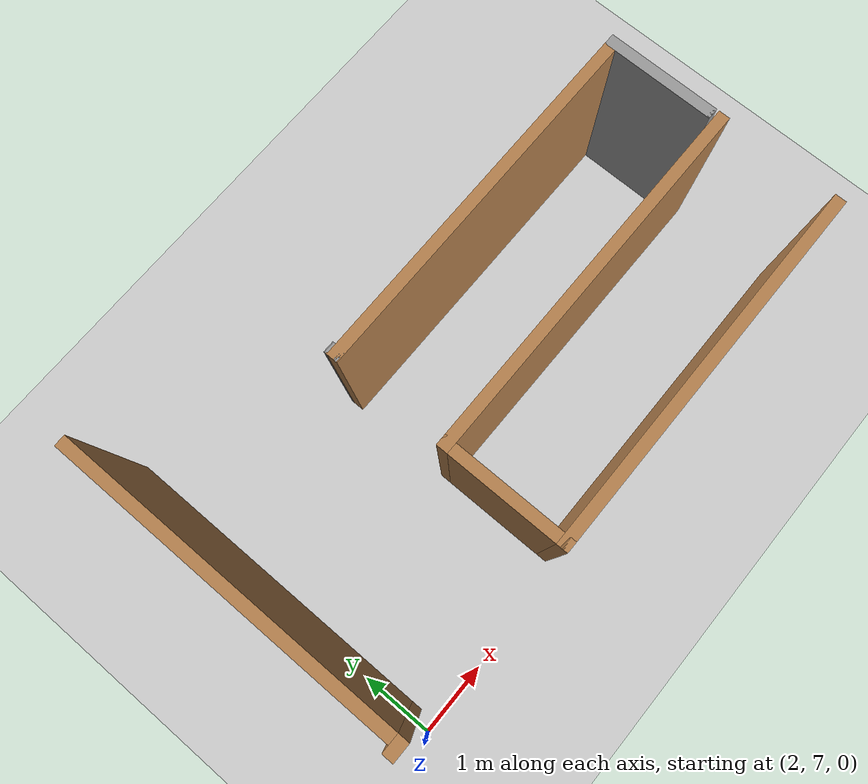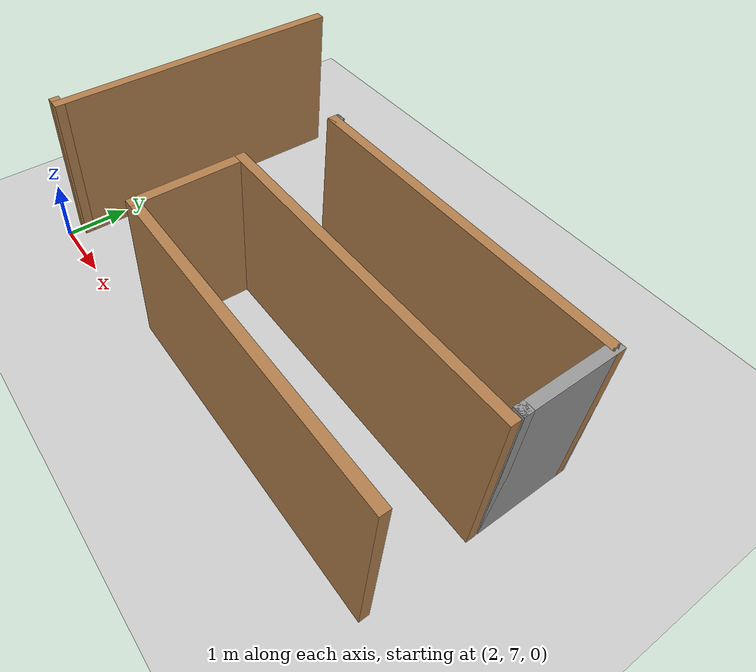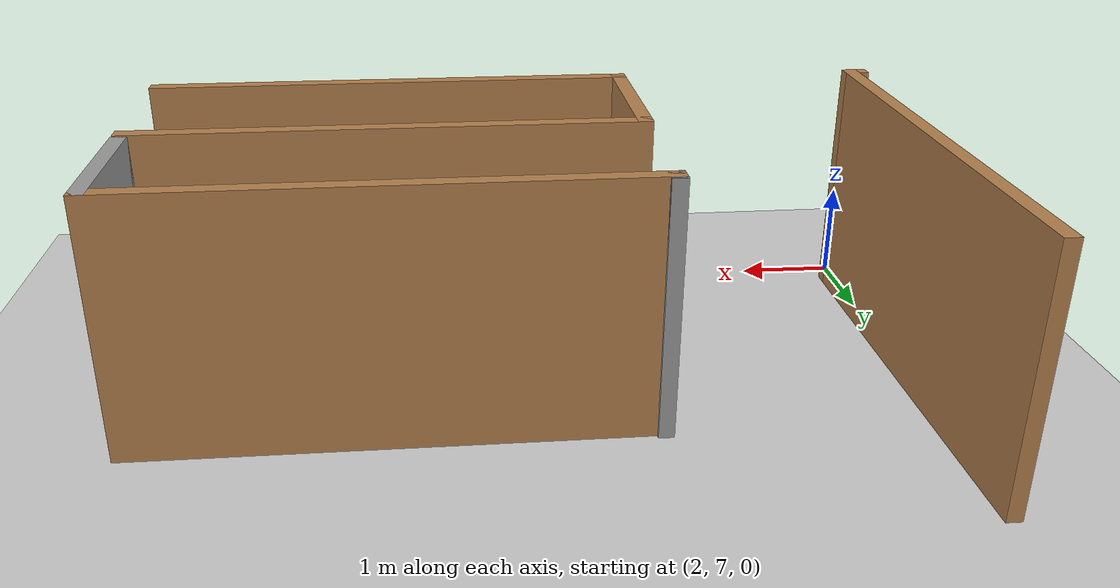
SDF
<sdf version="1.6">
 <world name="default">
  <model name="ground_plane">
   <static>1</static>
   <link name="link">
    <collision name="collision">
     <geometry><plane><normal>0 0 1</normal><size>100 100</size></plane></geometry>
     <surface>
      <contact><collide_bitmask>65535</collide_bitmask></contact>
      <friction><ode><mu>100</mu><mu2>50</mu2></ode></friction>
     </surface>
    </collision>
    <visual name="visual">
     <cast_shadows>0</cast_shadows>
     <geometry><plane><normal>0 0 1</normal><size>100 100</size></plane></geometry>
     <material>
      <script><uri>file://media/materials/scripts/gazebo.material</uri><name>Gazebo/Grey</name></script>
     </material>
    </visual>
   </link>
  </model>
  <model name="ecst_lab_v2">
   <pose>2.38151 7.60499 -4e-06 -3e-06 3e-06 -1.57079</pose>
   <link name="Wall_10">
    <collision name="Wall_10_Collision">
     <geometry><box><size>1.5 0.15 2.5</size></box></geometry>
     <pose>0 0 1.25 0 -0 0</pose>
    </collision>
    <visual name="Wall_10_Visual">
     <pose>0 0 1.25 0 -0 0</pose>
     <geometry><box><size>1.5 0.15 2.5</size></box></geometry>
     <material>
      <script><uri>file://media/materials/scripts/gazebo.material</uri><name>Gazebo/Grey</name></script>
      <ambient>1 1 1 1</ambient>
     </material>
     <meta><layer>0</layer></meta>
    </visual>
    <pose>-2.09801 7.10227 0 0 -0 0</pose>
    <inertial>
     <inertia><ixx>1</ixx><ixy>0</ixy><ixz>0</ixz><iyy>1</iyy><iyz>0</iyz><izz>1</izz></inertia>
     <mass>1</mass>
    </inertial>
   </link>
   <link name="Wall_11">
    <collision name="Wall_11_Collision">
     <geometry><box><size>0.15 0.15 2.5</size></box></geometry>
     <pose>0 0 1.25 0 -0 0</pose>
    </collision>
    <visual name="Wall_11_Visual">
     <pose>0 0 1.25 0 -0 0</pose>
     <geometry><box><size>0.15 0.15 2.5</size></box></geometry>
     <material>
      <script><uri>file://media/materials/scripts/gazebo.material</uri><name>Gazebo/Grey</name></script>
      <ambient>1 1 1 1</ambient>
     </material>
     <meta><layer>0</layer></meta>
    </visual>
    <pose>-1.42301 7.10227 0 0 -0 0</pose>
    <inertial>
     <inertia><ixx>1</ixx><ixy>0</ixy><ixz>0</ixz><iyy>1</iyy><iyz>0</iyz><izz>1</izz></inertia>
     <mass>1</mass>
    </inertial>
   </link>
   <link name="Wall_21">
    <collision name="Wall_21_Collision">
     <geometry><box><size>5 0.15 2.5</size></box></geometry>
     <pose>0 0 1.25 0 -0 0</pose>
    </collision>
    <visual name="Wall_21_Visual">
     <pose>0 0 1.25 0 -0 0</pose>
     <geometry><box><size>5 0.15 2.5</size></box></geometry>
     <material>
      <script><uri>file://media/materials/scripts/gazebo.material</uri><name>Gazebo/Wood</name></script>
      <ambient>1 1 1 1</ambient>
     </material>
     <meta><layer>0</layer></meta>
    </visual>
    <pose>-1.24301 4.67727 0 0 -0 -1.5708</pose>
    <inertial>
     <inertia><ixx>1</ixx><ixy>0</ixy><ixz>0</ixz><iyy>1</iyy><iyz>0</iyz><izz>1</izz></inertia>
     <mass>1</mass>
    </inertial>
   </link>
   <link name="Wall_22">
    <collision name="Wall_22_Collision">
     <geometry><box><size>1.75 0.15 2.5</size></box></geometry>
     <pose>0 0 1.25 0 -0 0</pose>
    </collision>
    <visual name="Wall_22_Visual">
     <pose>0 0 1.25 0 -0 0</pose>
     <geometry><box><size>1.75 0.15 2.5</size></box></geometry>
     <material>
      <script><uri>file://media/materials/scripts/gazebo.material</uri><name>Gazebo/Wood</name></script>
      <ambient>1 1 1 1</ambient>
     </material>
     <meta><layer>0</layer></meta>
    </visual>
    <pose>-0.443013 2.25228 0 0 -0 0</pose>
    <inertial>
     <inertia><ixx>1</ixx><ixy>0</ixy><ixz>0</ixz><iyy>1</iyy><iyz>0</iyz><izz>1</izz></inertia>
     <mass>1</mass>
    </inertial>
   </link>
   <link name="Wall_23">
    <collision name="Wall_23_Collision">
     <geometry><box><size>5 0.15 2.5</size></box></geometry>
     <pose>0 0 1.25 0 -0 0</pose>
    </collision>
    <visual name="Wall_23_Visual">
     <pose>0 0 1.25 0 -0 0</pose>
     <geometry><box><size>5 0.15 2.5</size></box></geometry>
     <material>
      <script><uri>file://media/materials/scripts/gazebo.material</uri><name>Gazebo/Wood</name></script>
      <ambient>1 1 1 1</ambient>
     </material>
     <meta><layer>0</layer></meta>
    </visual>
    <pose>0.356987 4.67727 0 0 -0 1.5708</pose>
    <inertial>
     <inertia><ixx>1</ixx><ixy>0</ixy><ixz>0</ixz><iyy>1</iyy><iyz>0</iyz><izz>1</izz></inertia>
     <mass>1</mass>
    </inertial>
   </link>
   <link name="Wall_5">
    <collision name="Wall_5_Collision">
     <geometry><box><size>0.16 0.15 2.5</size></box></geometry>
     <pose>0 0 1.25 0 -0 0</pose>
    </collision>
    <visual name="Wall_5_Visual">
     <pose>0 0 1.25 0 -0 0</pose>
     <geometry><box><size>0.16 0.15 2.5</size></box></geometry>
     <material>
      <script><uri>file://media/materials/scripts/gazebo.material</uri><name>Gazebo/Grey</name></script>
      <ambient>1 1 1 1</ambient>
     </material>
     <meta><layer>0</layer></meta>
    </visual>
    <pose>-2.80801 2.25228 0 0 -0 0</pose>
    <inertial>
     <inertia><ixx>1</ixx><ixy>0</ixy><ixz>0</ixz><iyy>1</iyy><iyz>0</iyz><izz>1</izz></inertia>
     <mass>1</mass>
    </inertial>
   </link>
   <link name="Wall_6">
    <collision name="Wall_6_Collision">
     <geometry><box><size>0.16 0.15 2.5</size></box></geometry>
     <pose>0 0 1.25 0 -0 0</pose>
    </collision>
    <visual name="Wall_6_Visual">
     <pose>0 0 1.25 0 -0 0</pose>
     <geometry><box><size>0.16 0.15 2.5</size></box></geometry>
     <material>
      <script><uri>file://media/materials/scripts/gazebo.material</uri><name>Gazebo/Grey</name></script>
      <ambient>1 1 1 1</ambient>
     </material>
     <meta><layer>0</layer></meta>
    </visual>
    <pose>-2.79801 2.25228 0 0 -0 0</pose>
    <inertial>
     <inertia><ixx>1</ixx><ixy>0</ixy><ixz>0</ixz><iyy>1</iyy><iyz>0</iyz><izz>1</izz></inertia>
     <mass>1</mass>
    </inertial>
   </link>
   <link name="Wall_7">
    <collision name="Wall_7_Collision">
     <geometry><box><size>0.16 0.15 2.5</size></box></geometry>
     <pose>0 0 1.25 0 -0 0</pose>
    </collision>
    <visual name="Wall_7_Visual">
     <pose>0 0 1.25 0 -0 0</pose>
     <geometry><box><size>0.16 0.15 2.5</size></box></geometry>
     <material>
      <script><uri>file://media/materials/scripts/gazebo.material</uri><name>Gazebo/Grey</name></script>
      <ambient>1 1 1 1</ambient>
     </material>
     <meta><layer>0</layer></meta>
    </visual>
    <pose>-2.78801 2.25228 0 0 -0 0</pose>
    <inertial>
     <inertia><ixx>1</ixx><ixy>0</ixy><ixz>0</ixz><iyy>1</iyy><iyz>0</iyz><izz>1</izz></inertia>
     <mass>1</mass>
    </inertial>
   </link>
   <link name="Wall_74">
    <collision name="Wall_74_Collision">
     <geometry><box><size>0.25 0.15 2.5</size></box></geometry>
     <pose>0 0 1.25 0 -0 0</pose>
    </collision>
    <visual name="Wall_74_Visual">
     <pose>0 0 1.25 0 -0 0</pose>
     <geometry><box><size>0.25 0.15 2.5</size></box></geometry>
     <material>
      <script><uri>file://media/materials/scripts/gazebo.material</uri><name>Gazebo/Wood</name></script>
      <ambient>1 1 1 1</ambient>
     </material>
     <meta><layer>0</layer></meta>
    </visual>
    <pose>0.303428 -0.352274 0 0 -0 1.5708</pose>
    <inertial>
     <inertia><ixx>1</ixx><ixy>0</ixy><ixz>0</ixz><iyy>1</iyy><iyz>0</iyz><izz>1</izz></inertia>
     <mass>1</mass>
    </inertial>
   </link>
   <link name="Wall_75">
    <collision name="Wall_75_Collision">
     <geometry><box><size>4.75 0.15 2.5</size></box></geometry>
     <pose>0 0 1.25 0 -0 0</pose>
    </collision>
    <visual name="Wall_75_Visual">
     <pose>0 0 1.25 0 -0 0</pose>
     <geometry><box><size>4.75 0.15 2.5</size></box></geometry>
     <material>
      <script><uri>file://media/materials/scripts/gazebo.material</uri><name>Gazebo/Wood</name></script>
      <ambient>1 1 1 1</ambient>
     </material>
     <meta><layer>0</layer></meta>
    </visual>
    <pose>-1.99657 -0.302274 0 0 -0 3.14159</pose>
    <inertial>
     <inertia><ixx>1</ixx><ixy>0</ixy><ixz>0</ixz><iyy>1</iyy><iyz>0</iyz><izz>1</izz></inertia>
     <mass>1</mass>
    </inertial>
   </link>
   <link name="Wall_8">
    <collision name="Wall_8_Collision">
     <geometry><box><size>0.16 0.15 2.5</size></box></geometry>
     <pose>0 0 1.25 0 -0 0</pose>
    </collision>
    <visual name="Wall_8_Visual">
     <pose>0 0 1.25 0 -0 0</pose>
     <geometry><box><size>0.16 0.15 2.5</size></box></geometry>
     <material>
      <script><uri>file://media/materials/scripts/gazebo.material</uri><name>Gazebo/Wood</name></script>
      <ambient>1 1 1 1</ambient>
     </material>
     <meta><layer>0</layer></meta>
    </visual>
    <pose>-2.77801 2.25228 0 0 -0 0</pose>
    <inertial>
     <inertia><ixx>1</ixx><ixy>0</ixy><ixz>0</ixz><iyy>1</iyy><iyz>0</iyz><izz>1</izz></inertia>
     <mass>1</mass>
    </inertial>
   </link>
   <link name="Wall_9">
    <collision name="Wall_9_Collision">
     <geometry><box><size>5 0.15 2.5</size></box></geometry>
     <pose>0 0 1.25 0 -0 0</pose>
    </collision>
    <visual name="Wall_9_Visual">
     <pose>0 0 1.25 0 -0 0</pose>
     <geometry><box><size>5 0.15 2.5</size></box></geometry>
     <material>
      <script><uri>file://media/materials/scripts/gazebo.material</uri><name>Gazebo/Wood</name></script>
      <ambient>1 1 1 1</ambient>
     </material>
     <meta><layer>0</layer></meta>
    </visual>
    <pose>-2.77301 4.67727 0 0 -0 1.5708</pose>
    <inertial>
     <inertia><ixx>1</ixx><ixy>0</ixy><ixz>0</ixz><iyy>1</iyy><iyz>0</iyz><izz>1</izz></inertia>
     <mass>1</mass>
    </inertial>
   </link>
  </model>
 </world>
</sdf>
